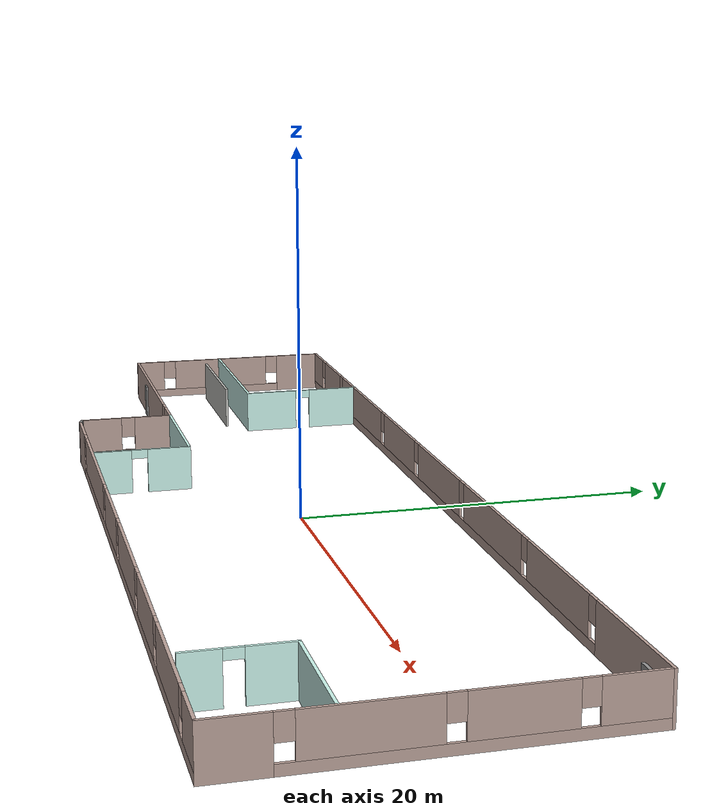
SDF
<?xml version='1.0'?>
<sdf version='1.6'>
  <model name='Building'>
    <pose frame=''>-0.510354 -1.23056 0 0 -0 0</pose>
    <link name='Door_2'>
      <collision name='Door_2_Collision'>
        <geometry>
          <box>
            <size>0.9 0.17 2</size>
          </box>
        </geometry>
        <pose frame=''>0 0 1 0 -0 0</pose>
      </collision>
      <visual name='Door_2_Visual'>
        <pose frame=''>0 0 1 0 -0 0</pose>
        <geometry>
          <box>
            <size>0.9 0.17 2</size>
          </box>
        </geometry>
        <material>
          <script>
            <uri>file://media/materials/scripts/gazebo.material</uri>
            <name>Gazebo/Grey</name>
          </script>
        </material>
      </visual>
      <pose frame=''>-25.4725 -3.75552 0 0 -0 0</pose>
    </link>
    <link name='Door_3'>
      <collision name='Door_3_Collision'>
        <geometry>
          <box>
            <size>0.9 0.17 2</size>
          </box>
        </geometry>
        <pose frame=''>0 0 1 0 -0 0</pose>
      </collision>
      <visual name='Door_3_Visual'>
        <pose frame=''>0 0 1 0 -0 0</pose>
        <geometry>
          <box>
            <size>0.9 0.17 2</size>
          </box>
        </geometry>
        <material>
          <script>
            <uri>file://media/materials/scripts/gazebo.material</uri>
            <name>Gazebo/Grey</name>
          </script>
        </material>
      </visual>
      <pose frame=''>29.2873 8.73464 0 0 -0 0</pose>
    </link>
    <link name='Wall_21'>
      <pose frame=''>8.25 -9.16807 0 0 -0 0</pose>
      <visual name='Wall_21_Visual_0'>
        <pose frame=''>-20.9527 0 1.25 0 -0 0</pose>
        <geometry>
          <box>
            <size>3.34458 0.15 2.5</size>
          </box>
        </geometry>
        <material>
          <script>
            <uri>file://media/materials/scripts/gazebo.material</uri>
            <name>Gazebo/Grey</name>
          </script>
          <ambient>0.760784 0.662745 0.627451 1</ambient>
        </material>
        <meta>
          <layer>0</layer>
        </meta>
      </visual>
      <collision name='Wall_21_Collision_0'>
        <geometry>
          <box>
            <size>3.34458 0.15 2.5</size>
          </box>
        </geometry>
        <pose frame=''>-20.9527 0 1.25 0 -0 0</pose>
      </collision>
      <visual name='Wall_21_Visual_1'>
        <pose frame=''>1.67229 0 0.25 0 -0 0</pose>
        <geometry>
          <box>
            <size>41.9054 0.15 0.5</size>
          </box>
        </geometry>
        <material>
          <script>
            <uri>file://media/materials/scripts/gazebo.material</uri>
            <name>Gazebo/Grey</name>
          </script>
          <ambient>0.760784 0.662745 0.627451 1</ambient>
        </material>
        <meta>
          <layer>0</layer>
        </meta>
      </visual>
      <collision name='Wall_21_Collision_1'>
        <geometry>
          <box>
            <size>41.9054 0.15 0.5</size>
          </box>
        </geometry>
        <pose frame=''>1.67229 0 0.25 0 -0 0</pose>
      </collision>
      <visual name='Wall_21_Visual_2'>
        <pose frame=''>-13.466 0 1.5 0 -0 0</pose>
        <geometry>
          <box>
            <size>10.0289 0.15 2</size>
          </box>
        </geometry>
        <material>
          <script>
            <uri>file://media/materials/scripts/gazebo.material</uri>
            <name>Gazebo/Grey</name>
          </script>
          <ambient>0.760784 0.662745 0.627451 1</ambient>
        </material>
        <meta>
          <layer>0</layer>
        </meta>
      </visual>
      <collision name='Wall_21_Collision_2'>
        <geometry>
          <box>
            <size>10.0289 0.15 2</size>
          </box>
        </geometry>
        <pose frame=''>-13.466 0 1.5 0 -0 0</pose>
      </collision>
      <visual name='Wall_21_Visual_3'>
        <pose frame=''>-4.94435 0 1.5 0 -0 0</pose>
        <geometry>
          <box>
            <size>5.41432 0.15 2</size>
          </box>
        </geometry>
        <material>
          <script>
            <uri>file://media/materials/scripts/gazebo.material</uri>
            <name>Gazebo/Grey</name>
          </script>
          <ambient>0.760784 0.662745 0.627451 1</ambient>
        </material>
        <meta>
          <layer>0</layer>
        </meta>
      </visual>
      <collision name='Wall_21_Collision_3'>
        <geometry>
          <box>
            <size>5.41432 0.15 2</size>
          </box>
        </geometry>
        <pose frame=''>-4.94435 0 1.5 0 -0 0</pose>
      </collision>
      <visual name='Wall_21_Visual_4'>
        <pose frame=''>1.97753 0 1.5 0 -0 0</pose>
        <geometry>
          <box>
            <size>6.82946 0.15 2</size>
          </box>
        </geometry>
        <material>
          <script>
            <uri>file://media/materials/scripts/gazebo.material</uri>
            <name>Gazebo/Grey</name>
          </script>
          <ambient>0.760784 0.662745 0.627451 1</ambient>
        </material>
        <meta>
          <layer>0</layer>
        </meta>
      </visual>
      <collision name='Wall_21_Collision_4'>
        <geometry>
          <box>
            <size>6.82946 0.15 2</size>
          </box>
        </geometry>
        <pose frame=''>1.97753 0 1.5 0 -0 0</pose>
      </collision>
      <visual name='Wall_21_Visual_5'>
        <pose frame=''>8.99171 0 1.5 0 -0 0</pose>
        <geometry>
          <box>
            <size>5.5989 0.15 2</size>
          </box>
        </geometry>
        <material>
          <script>
            <uri>file://media/materials/scripts/gazebo.material</uri>
            <name>Gazebo/Grey</name>
          </script>
          <ambient>0.760784 0.662745 0.627451 1</ambient>
        </material>
        <meta>
          <layer>0</layer>
        </meta>
      </visual>
      <collision name='Wall_21_Collision_5'>
        <geometry>
          <box>
            <size>5.5989 0.15 2</size>
          </box>
        </geometry>
        <pose frame=''>8.99171 0 1.5 0 -0 0</pose>
      </collision>
      <visual name='Wall_21_Visual_6'>
        <pose frame=''>15.8521 0 1.5 0 -0 0</pose>
        <geometry>
          <box>
            <size>6.52182 0.15 2</size>
          </box>
        </geometry>
        <material>
          <script>
            <uri>file://media/materials/scripts/gazebo.material</uri>
            <name>Gazebo/Grey</name>
          </script>
          <ambient>0.760784 0.662745 0.627451 1</ambient>
        </material>
        <meta>
          <layer>0</layer>
        </meta>
      </visual>
      <collision name='Wall_21_Collision_6'>
        <geometry>
          <box>
            <size>6.52182 0.15 2</size>
          </box>
        </geometry>
        <pose frame=''>15.8521 0 1.5 0 -0 0</pose>
      </collision>
      <visual name='Wall_21_Visual_7'>
        <pose frame=''>21.269 0 1.5 0 -0 0</pose>
        <geometry>
          <box>
            <size>2.71202 0.15 2</size>
          </box>
        </geometry>
        <material>
          <script>
            <uri>file://media/materials/scripts/gazebo.material</uri>
            <name>Gazebo/Grey</name>
          </script>
          <ambient>0.760784 0.662745 0.627451 1</ambient>
        </material>
        <meta>
          <layer>0</layer>
        </meta>
      </visual>
      <collision name='Wall_21_Collision_7'>
        <geometry>
          <box>
            <size>2.71202 0.15 2</size>
          </box>
        </geometry>
        <pose frame=''>21.269 0 1.5 0 -0 0</pose>
      </collision>
      <visual name='Wall_21_Visual_8'>
        <pose frame=''>-18.8804 0 1.9 0 -0 0</pose>
        <geometry>
          <box>
            <size>0.8 0.15 1.2</size>
          </box>
        </geometry>
        <material>
          <script>
            <uri>file://media/materials/scripts/gazebo.material</uri>
            <name>Gazebo/Grey</name>
          </script>
          <ambient>0.760784 0.662745 0.627451 1</ambient>
        </material>
        <meta>
          <layer>0</layer>
        </meta>
      </visual>
      <collision name='Wall_21_Collision_8'>
        <geometry>
          <box>
            <size>0.8 0.15 1.2</size>
          </box>
        </geometry>
        <pose frame=''>-18.8804 0 1.9 0 -0 0</pose>
      </collision>
      <visual name='Wall_21_Visual_9'>
        <pose frame=''>-8.05151 0 1.9 0 -0 0</pose>
        <geometry>
          <box>
            <size>0.8 0.15 1.2</size>
          </box>
        </geometry>
        <material>
          <script>
            <uri>file://media/materials/scripts/gazebo.material</uri>
            <name>Gazebo/Grey</name>
          </script>
          <ambient>0.760784 0.662745 0.627451 1</ambient>
        </material>
        <meta>
          <layer>0</layer>
        </meta>
      </visual>
      <collision name='Wall_21_Collision_9'>
        <geometry>
          <box>
            <size>0.8 0.15 1.2</size>
          </box>
        </geometry>
        <pose frame=''>-8.05151 0 1.9 0 -0 0</pose>
      </collision>
      <visual name='Wall_21_Visual_10'>
        <pose frame=''>-1.83719 0 1.9 0 -0 0</pose>
        <geometry>
          <box>
            <size>0.8 0.15 1.2</size>
          </box>
        </geometry>
        <material>
          <script>
            <uri>file://media/materials/scripts/gazebo.material</uri>
            <name>Gazebo/Grey</name>
          </script>
          <ambient>0.760784 0.662745 0.627451 1</ambient>
        </material>
        <meta>
          <layer>0</layer>
        </meta>
      </visual>
      <collision name='Wall_21_Collision_10'>
        <geometry>
          <box>
            <size>0.8 0.15 1.2</size>
          </box>
        </geometry>
        <pose frame=''>-1.83719 0 1.9 0 -0 0</pose>
      </collision>
      <visual name='Wall_21_Visual_11'>
        <pose frame=''>5.79226 0 1.9 0 -0 0</pose>
        <geometry>
          <box>
            <size>0.8 0.15 1.2</size>
          </box>
        </geometry>
        <material>
          <script>
            <uri>file://media/materials/scripts/gazebo.material</uri>
            <name>Gazebo/Grey</name>
          </script>
          <ambient>0.760784 0.662745 0.627451 1</ambient>
        </material>
        <meta>
          <layer>0</layer>
        </meta>
      </visual>
      <collision name='Wall_21_Collision_11'>
        <geometry>
          <box>
            <size>0.8 0.15 1.2</size>
          </box>
        </geometry>
        <pose frame=''>5.79226 0 1.9 0 -0 0</pose>
      </collision>
      <visual name='Wall_21_Visual_12'>
        <pose frame=''>12.1912 0 1.9 0 -0 0</pose>
        <geometry>
          <box>
            <size>0.8 0.15 1.2</size>
          </box>
        </geometry>
        <material>
          <script>
            <uri>file://media/materials/scripts/gazebo.material</uri>
            <name>Gazebo/Grey</name>
          </script>
          <ambient>0.760784 0.662745 0.627451 1</ambient>
        </material>
        <meta>
          <layer>0</layer>
        </meta>
      </visual>
      <collision name='Wall_21_Collision_12'>
        <geometry>
          <box>
            <size>0.8 0.15 1.2</size>
          </box>
        </geometry>
        <pose frame=''>12.1912 0 1.9 0 -0 0</pose>
      </collision>
      <visual name='Wall_21_Visual_13'>
        <pose frame=''>19.513 0 1.9 0 -0 0</pose>
        <geometry>
          <box>
            <size>0.8 0.15 1.2</size>
          </box>
        </geometry>
        <material>
          <script>
            <uri>file://media/materials/scripts/gazebo.material</uri>
            <name>Gazebo/Grey</name>
          </script>
          <ambient>0.760784 0.662745 0.627451 1</ambient>
        </material>
        <meta>
          <layer>0</layer>
        </meta>
      </visual>
      <collision name='Wall_21_Collision_13'>
        <geometry>
          <box>
            <size>0.8 0.15 1.2</size>
          </box>
        </geometry>
        <pose frame=''>19.513 0 1.9 0 -0 0</pose>
      </collision>
    </link>
    <link name='Wall_22'>
      <pose frame=''>30.8 0.006928 0 0 -0 1.5708</pose>
      <visual name='Wall_22_Visual_0'>
        <pose frame=''>-7.8084 0 1.25 0 -0 0</pose>
        <geometry>
          <box>
            <size>2.88319 0.15 2.5</size>
          </box>
        </geometry>
        <material>
          <script>
            <uri>file://media/materials/scripts/gazebo.material</uri>
            <name>Gazebo/Grey</name>
          </script>
          <ambient>0.760784 0.662745 0.627451 1</ambient>
        </material>
        <meta>
          <layer>0</layer>
        </meta>
      </visual>
      <collision name='Wall_22_Collision_0'>
        <geometry>
          <box>
            <size>2.88319 0.15 2.5</size>
          </box>
        </geometry>
        <pose frame=''>-7.8084 0 1.25 0 -0 0</pose>
      </collision>
      <visual name='Wall_22_Visual_1'>
        <pose frame=''>1.44159 0 0.25 0 -0 0</pose>
        <geometry>
          <box>
            <size>15.6168 0.15 0.5</size>
          </box>
        </geometry>
        <material>
          <script>
            <uri>file://media/materials/scripts/gazebo.material</uri>
            <name>Gazebo/Grey</name>
          </script>
          <ambient>0.760784 0.662745 0.627451 1</ambient>
        </material>
        <meta>
          <layer>0</layer>
        </meta>
      </visual>
      <collision name='Wall_22_Collision_1'>
        <geometry>
          <box>
            <size>15.6168 0.15 0.5</size>
          </box>
        </geometry>
        <pose frame=''>1.44159 0 0.25 0 -0 0</pose>
      </collision>
      <visual name='Wall_22_Visual_2'>
        <pose frame=''>-2.7366 0 1.5 0 -0 0</pose>
        <geometry>
          <box>
            <size>5.66043 0.15 2</size>
          </box>
        </geometry>
        <material>
          <script>
            <uri>file://media/materials/scripts/gazebo.material</uri>
            <name>Gazebo/Grey</name>
          </script>
          <ambient>0.760784 0.662745 0.627451 1</ambient>
        </material>
        <meta>
          <layer>0</layer>
        </meta>
      </visual>
      <collision name='Wall_22_Collision_2'>
        <geometry>
          <box>
            <size>5.66043 0.15 2</size>
          </box>
        </geometry>
        <pose frame=''>-2.7366 0 1.5 0 -0 0</pose>
      </collision>
      <visual name='Wall_22_Visual_3'>
        <pose frame=''>3.13931 0 1.5 0 -0 0</pose>
        <geometry>
          <box>
            <size>4.4914 0.15 2</size>
          </box>
        </geometry>
        <material>
          <script>
            <uri>file://media/materials/scripts/gazebo.material</uri>
            <name>Gazebo/Grey</name>
          </script>
          <ambient>0.760784 0.662745 0.627451 1</ambient>
        </material>
        <meta>
          <layer>0</layer>
        </meta>
      </visual>
      <collision name='Wall_22_Collision_3'>
        <geometry>
          <box>
            <size>4.4914 0.15 2</size>
          </box>
        </geometry>
        <pose frame=''>3.13931 0 1.5 0 -0 0</pose>
      </collision>
      <visual name='Wall_22_Visual_4'>
        <pose frame=''>7.71751 0 1.5 0 -0 0</pose>
        <geometry>
          <box>
            <size>3.06499 0.15 2</size>
          </box>
        </geometry>
        <material>
          <script>
            <uri>file://media/materials/scripts/gazebo.material</uri>
            <name>Gazebo/Grey</name>
          </script>
          <ambient>0.760784 0.662745 0.627451 1</ambient>
        </material>
        <meta>
          <layer>0</layer>
        </meta>
      </visual>
      <collision name='Wall_22_Collision_4'>
        <geometry>
          <box>
            <size>3.06499 0.15 2</size>
          </box>
        </geometry>
        <pose frame=''>7.71751 0 1.5 0 -0 0</pose>
      </collision>
      <visual name='Wall_22_Visual_5'>
        <pose frame=''>-5.96681 0 1.9 0 -0 0</pose>
        <geometry>
          <box>
            <size>0.8 0.15 1.2</size>
          </box>
        </geometry>
        <material>
          <script>
            <uri>file://media/materials/scripts/gazebo.material</uri>
            <name>Gazebo/Grey</name>
          </script>
          <ambient>0.760784 0.662745 0.627451 1</ambient>
        </material>
        <meta>
          <layer>0</layer>
        </meta>
      </visual>
      <collision name='Wall_22_Collision_5'>
        <geometry>
          <box>
            <size>0.8 0.15 1.2</size>
          </box>
        </geometry>
        <pose frame=''>-5.96681 0 1.9 0 -0 0</pose>
      </collision>
      <visual name='Wall_22_Visual_6'>
        <pose frame=''>0.493616 0 1.9 0 -0 0</pose>
        <geometry>
          <box>
            <size>0.8 0.15 1.2</size>
          </box>
        </geometry>
        <material>
          <script>
            <uri>file://media/materials/scripts/gazebo.material</uri>
            <name>Gazebo/Grey</name>
          </script>
          <ambient>0.760784 0.662745 0.627451 1</ambient>
        </material>
        <meta>
          <layer>0</layer>
        </meta>
      </visual>
      <collision name='Wall_22_Collision_6'>
        <geometry>
          <box>
            <size>0.8 0.15 1.2</size>
          </box>
        </geometry>
        <pose frame=''>0.493616 0 1.9 0 -0 0</pose>
      </collision>
      <visual name='Wall_22_Visual_7'>
        <pose frame=''>5.78501 0 1.9 0 -0 0</pose>
        <geometry>
          <box>
            <size>0.8 0.15 1.2</size>
          </box>
        </geometry>
        <material>
          <script>
            <uri>file://media/materials/scripts/gazebo.material</uri>
            <name>Gazebo/Grey</name>
          </script>
          <ambient>0.760784 0.662745 0.627451 1</ambient>
        </material>
        <meta>
          <layer>0</layer>
        </meta>
      </visual>
      <collision name='Wall_22_Collision_7'>
        <geometry>
          <box>
            <size>0.8 0.15 1.2</size>
          </box>
        </geometry>
        <pose frame=''>5.78501 0 1.9 0 -0 0</pose>
      </collision>
    </link>
    <link name='Wall_23'>
      <pose frame=''>0 9.18193 0 0 -0 3.14159</pose>
      <visual name='Wall_23_Visual_0'>
        <pose frame=''>-26.9656 0 1.25 0 -0 0</pose>
        <geometry>
          <box>
            <size>7.81883 0.15 2.5</size>
          </box>
        </geometry>
        <material>
          <script>
            <uri>file://media/materials/scripts/gazebo.material</uri>
            <name>Gazebo/Grey</name>
          </script>
          <ambient>0.760784 0.662745 0.627451 1</ambient>
        </material>
        <meta>
          <layer>0</layer>
        </meta>
      </visual>
      <collision name='Wall_23_Collision_0'>
        <geometry>
          <box>
            <size>7.81883 0.15 2.5</size>
          </box>
        </geometry>
        <pose frame=''>-26.9656 0 1.25 0 -0 0</pose>
      </collision>
      <visual name='Wall_23_Visual_1'>
        <pose frame=''>3.90942 0 0.25 0 -0 0</pose>
        <geometry>
          <box>
            <size>53.9312 0.15 0.5</size>
          </box>
        </geometry>
        <material>
          <script>
            <uri>file://media/materials/scripts/gazebo.material</uri>
            <name>Gazebo/Grey</name>
          </script>
          <ambient>0.760784 0.662745 0.627451 1</ambient>
        </material>
        <meta>
          <layer>0</layer>
        </meta>
      </visual>
      <collision name='Wall_23_Collision_1'>
        <geometry>
          <box>
            <size>53.9312 0.15 0.5</size>
          </box>
        </geometry>
        <pose frame=''>3.90942 0 0.25 0 -0 0</pose>
      </collision>
      <visual name='Wall_23_Visual_2'>
        <pose frame=''>-18.38 0 1.5 0 -0 0</pose>
        <geometry>
          <box>
            <size>7.75237 0.15 2</size>
          </box>
        </geometry>
        <material>
          <script>
            <uri>file://media/materials/scripts/gazebo.material</uri>
            <name>Gazebo/Grey</name>
          </script>
          <ambient>0.760784 0.662745 0.627451 1</ambient>
        </material>
        <meta>
          <layer>0</layer>
        </meta>
      </visual>
      <collision name='Wall_23_Collision_2'>
        <geometry>
          <box>
            <size>7.75237 0.15 2</size>
          </box>
        </geometry>
        <pose frame=''>-18.38 0 1.5 0 -0 0</pose>
      </collision>
      <visual name='Wall_23_Visual_3'>
        <pose frame=''>-9.21232 0 1.5 0 -0 0</pose>
        <geometry>
          <box>
            <size>8.98293 0.15 2</size>
          </box>
        </geometry>
        <material>
          <script>
            <uri>file://media/materials/scripts/gazebo.material</uri>
            <name>Gazebo/Grey</name>
          </script>
          <ambient>0.760784 0.662745 0.627451 1</ambient>
        </material>
        <meta>
          <layer>0</layer>
        </meta>
      </visual>
      <collision name='Wall_23_Collision_3'>
        <geometry>
          <box>
            <size>8.98293 0.15 2</size>
          </box>
        </geometry>
        <pose frame=''>-9.21232 0 1.5 0 -0 0</pose>
      </collision>
      <visual name='Wall_23_Visual_4'>
        <pose frame=''>-0.013907 0 1.5 0 -0 0</pose>
        <geometry>
          <box>
            <size>7.8139 0.15 2</size>
          </box>
        </geometry>
        <material>
          <script>
            <uri>file://media/materials/scripts/gazebo.material</uri>
            <name>Gazebo/Grey</name>
          </script>
          <ambient>0.760784 0.662745 0.627451 1</ambient>
        </material>
        <meta>
          <layer>0</layer>
        </meta>
      </visual>
      <collision name='Wall_23_Collision_4'>
        <geometry>
          <box>
            <size>7.8139 0.15 2</size>
          </box>
        </geometry>
        <pose frame=''>-0.013907 0 1.5 0 -0 0</pose>
      </collision>
      <visual name='Wall_23_Visual_5'>
        <pose frame=''>8.04625 0 1.5 0 -0 0</pose>
        <geometry>
          <box>
            <size>6.7064 0.15 2</size>
          </box>
        </geometry>
        <material>
          <script>
            <uri>file://media/materials/scripts/gazebo.material</uri>
            <name>Gazebo/Grey</name>
          </script>
          <ambient>0.760784 0.662745 0.627451 1</ambient>
        </material>
        <meta>
          <layer>0</layer>
        </meta>
      </visual>
      <collision name='Wall_23_Collision_5'>
        <geometry>
          <box>
            <size>6.7064 0.15 2</size>
          </box>
        </geometry>
        <pose frame=''>8.04625 0 1.5 0 -0 0</pose>
      </collision>
      <visual name='Wall_23_Visual_6'>
        <pose frame=''>17.2447 0 1.5 0 -0 0</pose>
        <geometry>
          <box>
            <size>10.0904 0.15 2</size>
          </box>
        </geometry>
        <material>
          <script>
            <uri>file://media/materials/scripts/gazebo.material</uri>
            <name>Gazebo/Grey</name>
          </script>
          <ambient>0.760784 0.662745 0.627451 1</ambient>
        </material>
        <meta>
          <layer>0</layer>
        </meta>
      </visual>
      <collision name='Wall_23_Collision_6'>
        <geometry>
          <box>
            <size>10.0904 0.15 2</size>
          </box>
        </geometry>
        <pose frame=''>17.2447 0 1.5 0 -0 0</pose>
      </collision>
      <visual name='Wall_23_Visual_7'>
        <pose frame=''>25.2741 0 1.5 0 -0 0</pose>
        <geometry>
          <box>
            <size>4.36834 0.15 2</size>
          </box>
        </geometry>
        <material>
          <script>
            <uri>file://media/materials/scripts/gazebo.material</uri>
            <name>Gazebo/Grey</name>
          </script>
          <ambient>0.760784 0.662745 0.627451 1</ambient>
        </material>
        <meta>
          <layer>0</layer>
        </meta>
      </visual>
      <collision name='Wall_23_Collision_7'>
        <geometry>
          <box>
            <size>4.36834 0.15 2</size>
          </box>
        </geometry>
        <pose frame=''>25.2741 0 1.5 0 -0 0</pose>
      </collision>
      <visual name='Wall_23_Visual_8'>
        <pose frame=''>29.5666 0 1.5 0 -0 0</pose>
        <geometry>
          <box>
            <size>2.61678 0.15 2</size>
          </box>
        </geometry>
        <material>
          <script>
            <uri>file://media/materials/scripts/gazebo.material</uri>
            <name>Gazebo/Grey</name>
          </script>
          <ambient>0.760784 0.662745 0.627451 1</ambient>
        </material>
        <meta>
          <layer>0</layer>
        </meta>
      </visual>
      <collision name='Wall_23_Collision_8'>
        <geometry>
          <box>
            <size>2.61678 0.15 2</size>
          </box>
        </geometry>
        <pose frame=''>29.5666 0 1.5 0 -0 0</pose>
      </collision>
      <visual name='Wall_23_Visual_9'>
        <pose frame=''>-22.6562 0 1.9 0 -0 0</pose>
        <geometry>
          <box>
            <size>0.8 0.15 1.2</size>
          </box>
        </geometry>
        <material>
          <script>
            <uri>file://media/materials/scripts/gazebo.material</uri>
            <name>Gazebo/Grey</name>
          </script>
          <ambient>0.760784 0.662745 0.627451 1</ambient>
        </material>
        <meta>
          <layer>0</layer>
        </meta>
      </visual>
      <collision name='Wall_23_Collision_9'>
        <geometry>
          <box>
            <size>0.8 0.15 1.2</size>
          </box>
        </geometry>
        <pose frame=''>-22.6562 0 1.9 0 -0 0</pose>
      </collision>
      <visual name='Wall_23_Visual_10'>
        <pose frame=''>-14.1038 0 1.9 0 -0 0</pose>
        <geometry>
          <box>
            <size>0.8 0.15 1.2</size>
          </box>
        </geometry>
        <material>
          <script>
            <uri>file://media/materials/scripts/gazebo.material</uri>
            <name>Gazebo/Grey</name>
          </script>
          <ambient>0.760784 0.662745 0.627451 1</ambient>
        </material>
        <meta>
          <layer>0</layer>
        </meta>
      </visual>
      <collision name='Wall_23_Collision_10'>
        <geometry>
          <box>
            <size>0.8 0.15 1.2</size>
          </box>
        </geometry>
        <pose frame=''>-14.1038 0 1.9 0 -0 0</pose>
      </collision>
      <visual name='Wall_23_Visual_11'>
        <pose frame=''>-4.32086 0 1.9 0 -0 0</pose>
        <geometry>
          <box>
            <size>0.8 0.15 1.2</size>
          </box>
        </geometry>
        <material>
          <script>
            <uri>file://media/materials/scripts/gazebo.material</uri>
            <name>Gazebo/Grey</name>
          </script>
          <ambient>0.760784 0.662745 0.627451 1</ambient>
        </material>
        <meta>
          <layer>0</layer>
        </meta>
      </visual>
      <collision name='Wall_23_Collision_11'>
        <geometry>
          <box>
            <size>0.8 0.15 1.2</size>
          </box>
        </geometry>
        <pose frame=''>-4.32086 0 1.9 0 -0 0</pose>
      </collision>
      <visual name='Wall_23_Visual_12'>
        <pose frame=''>4.29304 0 1.9 0 -0 0</pose>
        <geometry>
          <box>
            <size>0.8 0.15 1.2</size>
          </box>
        </geometry>
        <material>
          <script>
            <uri>file://media/materials/scripts/gazebo.material</uri>
            <name>Gazebo/Grey</name>
          </script>
          <ambient>0.760784 0.662745 0.627451 1</ambient>
        </material>
        <meta>
          <layer>0</layer>
        </meta>
      </visual>
      <collision name='Wall_23_Collision_12'>
        <geometry>
          <box>
            <size>0.8 0.15 1.2</size>
          </box>
        </geometry>
        <pose frame=''>4.29304 0 1.9 0 -0 0</pose>
      </collision>
      <visual name='Wall_23_Visual_13'>
        <pose frame=''>11.7994 0 1.9 0 -0 0</pose>
        <geometry>
          <box>
            <size>0.8 0.15 1.2</size>
          </box>
        </geometry>
        <material>
          <script>
            <uri>file://media/materials/scripts/gazebo.material</uri>
            <name>Gazebo/Grey</name>
          </script>
          <ambient>0.760784 0.662745 0.627451 1</ambient>
        </material>
        <meta>
          <layer>0</layer>
        </meta>
      </visual>
      <collision name='Wall_23_Collision_13'>
        <geometry>
          <box>
            <size>0.8 0.15 1.2</size>
          </box>
        </geometry>
        <pose frame=''>11.7994 0 1.9 0 -0 0</pose>
      </collision>
      <visual name='Wall_23_Visual_14'>
        <pose frame=''>22.6899 0 1.9 0 -0 0</pose>
        <geometry>
          <box>
            <size>0.8 0.15 1.2</size>
          </box>
        </geometry>
        <material>
          <script>
            <uri>file://media/materials/scripts/gazebo.material</uri>
            <name>Gazebo/Grey</name>
          </script>
          <ambient>0.760784 0.662745 0.627451 1</ambient>
        </material>
        <meta>
          <layer>0</layer>
        </meta>
      </visual>
      <collision name='Wall_23_Collision_14'>
        <geometry>
          <box>
            <size>0.8 0.15 1.2</size>
          </box>
        </geometry>
        <pose frame=''>22.6899 0 1.9 0 -0 0</pose>
      </collision>
      <visual name='Wall_23_Visual_15'>
        <pose frame=''>27.8582 0 1.9 0 -0 0</pose>
        <geometry>
          <box>
            <size>0.8 0.15 1.2</size>
          </box>
        </geometry>
        <material>
          <script>
            <uri>file://media/materials/scripts/gazebo.material</uri>
            <name>Gazebo/Grey</name>
          </script>
          <ambient>0.760784 0.662745 0.627451 1</ambient>
        </material>
        <meta>
          <layer>0</layer>
        </meta>
      </visual>
      <collision name='Wall_23_Collision_15'>
        <geometry>
          <box>
            <size>0.8 0.15 1.2</size>
          </box>
        </geometry>
        <pose frame=''>27.8582 0 1.9 0 -0 0</pose>
      </collision>
    </link>
    <link name='Wall_24'>
      <pose frame=''>-30.8 2.75693 0 0 0 -1.5708</pose>
      <visual name='Wall_24_Visual_0'>
        <pose frame=''>-4.99827 0 1.25 0 -0 0</pose>
        <geometry>
          <box>
            <size>3.00346 0.15 2.5</size>
          </box>
        </geometry>
        <material>
          <script>
            <uri>file://media/materials/scripts/gazebo.material</uri>
            <name>Gazebo/Grey</name>
          </script>
          <ambient>0.760784 0.662745 0.627451 1</ambient>
        </material>
        <meta>
          <layer>0</layer>
        </meta>
      </visual>
      <collision name='Wall_24_Collision_0'>
        <geometry>
          <box>
            <size>3.00346 0.15 2.5</size>
          </box>
        </geometry>
        <pose frame=''>-4.99827 0 1.25 0 -0 0</pose>
      </collision>
      <visual name='Wall_24_Visual_1'>
        <pose frame=''>1.50173 0 0.25 0 -0 0</pose>
        <geometry>
          <box>
            <size>9.99654 0.15 0.5</size>
          </box>
        </geometry>
        <material>
          <script>
            <uri>file://media/materials/scripts/gazebo.material</uri>
            <name>Gazebo/Grey</name>
          </script>
          <ambient>0.760784 0.662745 0.627451 1</ambient>
        </material>
        <meta>
          <layer>0</layer>
        </meta>
      </visual>
      <collision name='Wall_24_Collision_1'>
        <geometry>
          <box>
            <size>9.99654 0.15 0.5</size>
          </box>
        </geometry>
        <pose frame=''>1.50173 0 0.25 0 -0 0</pose>
      </collision>
      <visual name='Wall_24_Visual_2'>
        <pose frame=''>0.564367 0 1.5 0 -0 0</pose>
        <geometry>
          <box>
            <size>6.52182 0.15 2</size>
          </box>
        </geometry>
        <material>
          <script>
            <uri>file://media/materials/scripts/gazebo.material</uri>
            <name>Gazebo/Grey</name>
          </script>
          <ambient>0.760784 0.662745 0.627451 1</ambient>
        </material>
        <meta>
          <layer>0</layer>
        </meta>
      </visual>
      <collision name='Wall_24_Collision_2'>
        <geometry>
          <box>
            <size>6.52182 0.15 2</size>
          </box>
        </geometry>
        <pose frame=''>0.564367 0 1.5 0 -0 0</pose>
      </collision>
      <visual name='Wall_24_Visual_3'>
        <pose frame=''>5.56264 0 1.5 0 -0 0</pose>
        <geometry>
          <box>
            <size>1.87472 0.15 2</size>
          </box>
        </geometry>
        <material>
          <script>
            <uri>file://media/materials/scripts/gazebo.material</uri>
            <name>Gazebo/Grey</name>
          </script>
          <ambient>0.760784 0.662745 0.627451 1</ambient>
        </material>
        <meta>
          <layer>0</layer>
        </meta>
      </visual>
      <collision name='Wall_24_Collision_3'>
        <geometry>
          <box>
            <size>1.87472 0.15 2</size>
          </box>
        </geometry>
        <pose frame=''>5.56264 0 1.5 0 -0 0</pose>
      </collision>
      <visual name='Wall_24_Visual_4'>
        <pose frame=''>-3.09654 0 1.9 0 -0 0</pose>
        <geometry>
          <box>
            <size>0.8 0.15 1.2</size>
          </box>
        </geometry>
        <material>
          <script>
            <uri>file://media/materials/scripts/gazebo.material</uri>
            <name>Gazebo/Grey</name>
          </script>
          <ambient>0.760784 0.662745 0.627451 1</ambient>
        </material>
        <meta>
          <layer>0</layer>
        </meta>
      </visual>
      <collision name='Wall_24_Collision_4'>
        <geometry>
          <box>
            <size>0.8 0.15 1.2</size>
          </box>
        </geometry>
        <pose frame=''>-3.09654 0 1.9 0 -0 0</pose>
      </collision>
      <visual name='Wall_24_Visual_5'>
        <pose frame=''>4.22528 0 1.9 0 -0 0</pose>
        <geometry>
          <box>
            <size>0.8 0.15 1.2</size>
          </box>
        </geometry>
        <material>
          <script>
            <uri>file://media/materials/scripts/gazebo.material</uri>
            <name>Gazebo/Grey</name>
          </script>
          <ambient>0.760784 0.662745 0.627451 1</ambient>
        </material>
        <meta>
          <layer>0</layer>
        </meta>
      </visual>
      <collision name='Wall_24_Collision_5'>
        <geometry>
          <box>
            <size>0.8 0.15 1.2</size>
          </box>
        </geometry>
        <pose frame=''>4.22528 0 1.9 0 -0 0</pose>
      </collision>
    </link>
    <link name='Wall_25'>
      <pose frame=''>-22.75 -3.66807 0 0 -0 0</pose>
      <visual name='Wall_25_Visual_0'>
        <pose frame=''>-1.55598 0 1.25 0 -0 0</pose>
        <geometry>
          <box>
            <size>13.138 0.15 2.5</size>
          </box>
        </geometry>
        <material>
          <script>
            <uri>file://media/materials/scripts/gazebo.material</uri>
            <name>Gazebo/Grey</name>
          </script>
          <ambient>0.760784 0.662745 0.627451 1</ambient>
        </material>
        <meta>
          <layer>0</layer>
        </meta>
      </visual>
      <collision name='Wall_25_Collision_0'>
        <geometry>
          <box>
            <size>13.138 0.15 2.5</size>
          </box>
        </geometry>
        <pose frame=''>-1.55598 0 1.25 0 -0 0</pose>
      </collision>
      <visual name='Wall_25_Visual_1'>
        <pose frame=''>6.56902 0 0.25 0 -0 0</pose>
        <geometry>
          <box>
            <size>3.11195 0.15 0.5</size>
          </box>
        </geometry>
        <material>
          <script>
            <uri>file://media/materials/scripts/gazebo.material</uri>
            <name>Gazebo/Grey</name>
          </script>
          <ambient>0.760784 0.662745 0.627451 1</ambient>
        </material>
        <meta>
          <layer>0</layer>
        </meta>
      </visual>
      <collision name='Wall_25_Collision_1'>
        <geometry>
          <box>
            <size>3.11195 0.15 0.5</size>
          </box>
        </geometry>
        <pose frame=''>6.56902 0 0.25 0 -0 0</pose>
      </collision>
      <visual name='Wall_25_Visual_2'>
        <pose frame=''>6.96902 0 1.5 0 -0 0</pose>
        <geometry>
          <box>
            <size>2.31195 0.15 2</size>
          </box>
        </geometry>
        <material>
          <script>
            <uri>file://media/materials/scripts/gazebo.material</uri>
            <name>Gazebo/Grey</name>
          </script>
          <ambient>0.760784 0.662745 0.627451 1</ambient>
        </material>
        <meta>
          <layer>0</layer>
        </meta>
      </visual>
      <collision name='Wall_25_Collision_2'>
        <geometry>
          <box>
            <size>2.31195 0.15 2</size>
          </box>
        </geometry>
        <pose frame=''>6.96902 0 1.5 0 -0 0</pose>
      </collision>
      <visual name='Wall_25_Visual_3'>
        <pose frame=''>5.41305 0 1.9 0 -0 0</pose>
        <geometry>
          <box>
            <size>0.8 0.15 1.2</size>
          </box>
        </geometry>
        <material>
          <script>
            <uri>file://media/materials/scripts/gazebo.material</uri>
            <name>Gazebo/Grey</name>
          </script>
          <ambient>0.760784 0.662745 0.627451 1</ambient>
        </material>
        <meta>
          <layer>0</layer>
        </meta>
      </visual>
      <collision name='Wall_25_Collision_3'>
        <geometry>
          <box>
            <size>0.8 0.15 1.2</size>
          </box>
        </geometry>
        <pose frame=''>5.41305 0 1.9 0 -0 0</pose>
      </collision>
    </link>
    <link name='Wall_26'>
      <pose frame=''>-14.7 -6.34307 0 0 0 -1.5708</pose>
      <visual name='Wall_26_Visual_0'>
        <pose frame=''>-1.61278 0 1.25 0 -0 0</pose>
        <geometry>
          <box>
            <size>2.27445 0.15 2.5</size>
          </box>
        </geometry>
        <material>
          <script>
            <uri>file://media/materials/scripts/gazebo.material</uri>
            <name>Gazebo/Grey</name>
          </script>
          <ambient>0.760784 0.662745 0.627451 1</ambient>
        </material>
        <meta>
          <layer>0</layer>
        </meta>
      </visual>
      <collision name='Wall_26_Collision_0'>
        <geometry>
          <box>
            <size>2.27445 0.15 2.5</size>
          </box>
        </geometry>
        <pose frame=''>-1.61278 0 1.25 0 -0 0</pose>
      </collision>
      <visual name='Wall_26_Visual_1'>
        <pose frame=''>1.13722 0 0.25 0 -0 0</pose>
        <geometry>
          <box>
            <size>3.22555 0.15 0.5</size>
          </box>
        </geometry>
        <material>
          <script>
            <uri>file://media/materials/scripts/gazebo.material</uri>
            <name>Gazebo/Grey</name>
          </script>
          <ambient>0.760784 0.662745 0.627451 1</ambient>
        </material>
        <meta>
          <layer>0</layer>
        </meta>
      </visual>
      <collision name='Wall_26_Collision_1'>
        <geometry>
          <box>
            <size>3.22555 0.15 0.5</size>
          </box>
        </geometry>
        <pose frame=''>1.13722 0 0.25 0 -0 0</pose>
      </collision>
      <visual name='Wall_26_Visual_2'>
        <pose frame=''>1.53723 0 1.5 0 -0 0</pose>
        <geometry>
          <box>
            <size>2.42555 0.15 2</size>
          </box>
        </geometry>
        <material>
          <script>
            <uri>file://media/materials/scripts/gazebo.material</uri>
            <name>Gazebo/Grey</name>
          </script>
          <ambient>0.760784 0.662745 0.627451 1</ambient>
        </material>
        <meta>
          <layer>0</layer>
        </meta>
      </visual>
      <collision name='Wall_26_Collision_2'>
        <geometry>
          <box>
            <size>2.42555 0.15 2</size>
          </box>
        </geometry>
        <pose frame=''>1.53723 0 1.5 0 -0 0</pose>
      </collision>
      <visual name='Wall_26_Visual_3'>
        <pose frame=''>-0.07555 0 1.9 0 -0 0</pose>
        <geometry>
          <box>
            <size>0.8 0.15 1.2</size>
          </box>
        </geometry>
        <material>
          <script>
            <uri>file://media/materials/scripts/gazebo.material</uri>
            <name>Gazebo/Grey</name>
          </script>
          <ambient>0.760784 0.662745 0.627451 1</ambient>
        </material>
        <meta>
          <layer>0</layer>
        </meta>
      </visual>
      <collision name='Wall_26_Collision_3'>
        <geometry>
          <box>
            <size>0.8 0.15 1.2</size>
          </box>
        </geometry>
        <pose frame=''>-0.07555 0 1.9 0 -0 0</pose>
      </collision>
    </link>
    <link name='Wall_27'>
      <collision name='Wall_27_Collision'>
        <geometry>
          <box>
            <size>0.5772 0.15 2.5</size>
          </box>
        </geometry>
        <pose frame=''>0 0 1.25 0 -0 0</pose>
      </collision>
      <visual name='Wall_27_Visual'>
        <pose frame=''>0 0 1.25 0 -0 0</pose>
        <geometry>
          <box>
            <size>0.5772 0.15 2.5</size>
          </box>
        </geometry>
        <material>
          <script>
            <uri>file://media/materials/scripts/gazebo.material</uri>
            <name>Gazebo/Grey</name>
          </script>
          <ambient>1 1 1 1</ambient>
        </material>
        <meta>
          <layer>0</layer>
        </meta>
      </visual>
      <pose frame=''>-14.5 -9.09307 0 0 0 -0.358771</pose>
    </link>
    <link name='Wall_31'>
      <pose frame=''>-19.3563 5.63963 0 0 -0 1.5708</pose>
      <visual name='Wall_31_Visual_0'>
        <pose frame=''>-2.02287 0 1.25 0 -0 0</pose>
        <geometry>
          <box>
            <size>3.20426 0.15 2.5</size>
          </box>
        </geometry>
        <material>
          <script>
            <uri>file://media/materials/scripts/gazebo.material</uri>
            <name>Gazebo/Grey</name>
          </script>
          <ambient>0.831373 1 0.964706 1</ambient>
        </material>
        <meta>
          <layer>0</layer>
        </meta>
      </visual>
      <collision name='Wall_31_Collision_0'>
        <geometry>
          <box>
            <size>3.20426 0.15 2.5</size>
          </box>
        </geometry>
        <pose frame=''>-2.02287 0 1.25 0 -0 0</pose>
      </collision>
      <visual name='Wall_31_Visual_1'>
        <pose frame=''>2.05213 0 1.25 0 -0 0</pose>
        <geometry>
          <box>
            <size>3.14574 0.15 2.5</size>
          </box>
        </geometry>
        <material>
          <script>
            <uri>file://media/materials/scripts/gazebo.material</uri>
            <name>Gazebo/Grey</name>
          </script>
          <ambient>0.831373 1 0.964706 1</ambient>
        </material>
        <meta>
          <layer>0</layer>
        </meta>
      </visual>
      <collision name='Wall_31_Collision_1'>
        <geometry>
          <box>
            <size>3.14574 0.15 2.5</size>
          </box>
        </geometry>
        <pose frame=''>2.05213 0 1.25 0 -0 0</pose>
      </collision>
      <visual name='Wall_31_Visual_2'>
        <pose frame=''>0.029256 0 2.25 0 -0 0</pose>
        <geometry>
          <box>
            <size>0.9 0.15 0.5</size>
          </box>
        </geometry>
        <material>
          <script>
            <uri>file://media/materials/scripts/gazebo.material</uri>
            <name>Gazebo/Grey</name>
          </script>
          <ambient>0.831373 1 0.964706 1</ambient>
        </material>
        <meta>
          <layer>0</layer>
        </meta>
      </visual>
      <collision name='Wall_31_Collision_2'>
        <geometry>
          <box>
            <size>0.9 0.15 0.5</size>
          </box>
        </geometry>
        <pose frame=''>0.029256 0 2.25 0 -0 0</pose>
      </collision>
    </link>
    <link name='Wall_33'>
      <collision name='Wall_33_Collision'>
        <geometry>
          <box>
            <size>11.5 0.15 2.5</size>
          </box>
        </geometry>
        <pose frame=''>0 0 1.25 0 -0 0</pose>
      </collision>
      <visual name='Wall_33_Visual'>
        <pose frame=''>0 0 1.25 0 -0 0</pose>
        <geometry>
          <box>
            <size>11.5 0.15 2.5</size>
          </box>
        </geometry>
        <material>
          <script>
            <uri>file://media/materials/scripts/gazebo.material</uri>
            <name>Gazebo/Grey</name>
          </script>
          <ambient>0.831373 1 0.964706 1</ambient>
        </material>
        <meta>
          <layer>0</layer>
        </meta>
      </visual>
      <pose frame=''>-25.0313 2.08963 0 0 -0 3.14159</pose>
    </link>
    <link name='Wall_35'>
      <collision name='Wall_35_Collision'>
        <geometry>
          <box>
            <size>8.5 0.15 2.5</size>
          </box>
        </geometry>
        <pose frame=''>0 0 1.25 0 -0 0</pose>
      </collision>
      <visual name='Wall_35_Visual'>
        <pose frame=''>0 0 1.25 0 -0 0</pose>
        <geometry>
          <box>
            <size>8.5 0.15 2.5</size>
          </box>
        </geometry>
        <material>
          <script>
            <uri>file://media/materials/scripts/gazebo.material</uri>
            <name>Gazebo/CeilingTiled</name>
          </script>
          <ambient>1 1 1 1</ambient>
        </material>
        <meta>
          <layer>0</layer>
        </meta>
      </visual>
      <pose frame=''>-25.1122 0.9206 0 0 -0 0</pose>
    </link>
    <link name='Wall_37'>
      <collision name='Wall_37_Collision'>
        <geometry>
          <box>
            <size>6.5 0.15 2.5</size>
          </box>
        </geometry>
        <pose frame=''>0 0 1.25 0 -0 0</pose>
      </collision>
      <visual name='Wall_37_Visual'>
        <pose frame=''>0 0 1.25 0 -0 0</pose>
        <geometry>
          <box>
            <size>6.5 0.15 2.5</size>
          </box>
        </geometry>
        <material>
          <script>
            <uri>file://media/materials/scripts/gazebo.material</uri>
            <name>Gazebo/Grey</name>
          </script>
          <ambient>0.831373 1 0.964706 1</ambient>
        </material>
        <meta>
          <layer>0</layer>
        </meta>
      </visual>
      <pose frame=''>27.5413 -3.99099 0 0 -0 3.14159</pose>
    </link>
    <link name='Wall_38'>
      <pose frame=''>24.3663 -6.41599 0 0 0 -1.5708</pose>
      <visual name='Wall_38_Visual_0'>
        <pose frame=''>-1.36465 0 1.25 0 -0 0</pose>
        <geometry>
          <box>
            <size>2.2707 0.15 2.5</size>
          </box>
        </geometry>
        <material>
          <script>
            <uri>file://media/materials/scripts/gazebo.material</uri>
            <name>Gazebo/Grey</name>
          </script>
          <ambient>0.831373 1 0.964706 1</ambient>
        </material>
        <meta>
          <layer>0</layer>
        </meta>
      </visual>
      <collision name='Wall_38_Collision_0'>
        <geometry>
          <box>
            <size>2.2707 0.15 2.5</size>
          </box>
        </geometry>
        <pose frame=''>-1.36465 0 1.25 0 -0 0</pose>
      </collision>
      <visual name='Wall_38_Visual_1'>
        <pose frame=''>1.58535 0 1.25 0 -0 0</pose>
        <geometry>
          <box>
            <size>1.8293 0.15 2.5</size>
          </box>
        </geometry>
        <material>
          <script>
            <uri>file://media/materials/scripts/gazebo.material</uri>
            <name>Gazebo/Grey</name>
          </script>
          <ambient>0.831373 1 0.964706 1</ambient>
        </material>
        <meta>
          <layer>0</layer>
        </meta>
      </visual>
      <collision name='Wall_38_Collision_1'>
        <geometry>
          <box>
            <size>1.8293 0.15 2.5</size>
          </box>
        </geometry>
        <pose frame=''>1.58535 0 1.25 0 -0 0</pose>
      </collision>
      <visual name='Wall_38_Visual_2'>
        <pose frame=''>0.220698 0 2.25 0 -0 0</pose>
        <geometry>
          <box>
            <size>0.9 0.15 0.5</size>
          </box>
        </geometry>
        <material>
          <script>
            <uri>file://media/materials/scripts/gazebo.material</uri>
            <name>Gazebo/Grey</name>
          </script>
          <ambient>0.831373 1 0.964706 1</ambient>
        </material>
        <meta>
          <layer>0</layer>
        </meta>
      </visual>
      <collision name='Wall_38_Collision_2'>
        <geometry>
          <box>
            <size>0.9 0.15 0.5</size>
          </box>
        </geometry>
        <pose frame=''>0.220698 0 2.25 0 -0 0</pose>
      </collision>
    </link>
    <link name='Wall_40'>
      <collision name='Wall_40_Collision'>
        <geometry>
          <box>
            <size>8 0.15 2.5</size>
          </box>
        </geometry>
        <pose frame=''>0 0 1.25 0 -0 0</pose>
      </collision>
      <visual name='Wall_40_Visual'>
        <pose frame=''>0 0 1.25 0 -0 0</pose>
        <geometry>
          <box>
            <size>8 0.15 2.5</size>
          </box>
        </geometry>
        <material>
          <script>
            <uri>file://media/materials/scripts/gazebo.material</uri>
            <name>Gazebo/Grey</name>
          </script>
          <ambient>0.831373 1 0.964706 1</ambient>
        </material>
        <meta>
          <layer>0</layer>
        </meta>
      </visual>
      <pose frame=''>-10.775 -3.66807 0 0 -0 0</pose>
    </link>
    <link name='Wall_41'>
      <pose frame=''>-6.85 -6.34307 0 0 0 -1.5708</pose>
      <visual name='Wall_41_Visual_0'>
        <pose frame=''>-1.51472 0 1.25 0 -0 0</pose>
        <geometry>
          <box>
            <size>2.47056 0.15 2.5</size>
          </box>
        </geometry>
        <material>
          <script>
            <uri>file://media/materials/scripts/gazebo.material</uri>
            <name>Gazebo/Grey</name>
          </script>
          <ambient>0.831373 1 0.964706 1</ambient>
        </material>
        <meta>
          <layer>0</layer>
        </meta>
      </visual>
      <collision name='Wall_41_Collision_0'>
        <geometry>
          <box>
            <size>2.47056 0.15 2.5</size>
          </box>
        </geometry>
        <pose frame=''>-1.51472 0 1.25 0 -0 0</pose>
      </collision>
      <visual name='Wall_41_Visual_1'>
        <pose frame=''>1.68528 0 1.25 0 -0 0</pose>
        <geometry>
          <box>
            <size>2.12944 0.15 2.5</size>
          </box>
        </geometry>
        <material>
          <script>
            <uri>file://media/materials/scripts/gazebo.material</uri>
            <name>Gazebo/Grey</name>
          </script>
          <ambient>0.831373 1 0.964706 1</ambient>
        </material>
        <meta>
          <layer>0</layer>
        </meta>
      </visual>
      <collision name='Wall_41_Collision_1'>
        <geometry>
          <box>
            <size>2.12944 0.15 2.5</size>
          </box>
        </geometry>
        <pose frame=''>1.68528 0 1.25 0 -0 0</pose>
      </collision>
      <visual name='Wall_41_Visual_2'>
        <pose frame=''>0.170562 0 2.25 0 -0 0</pose>
        <geometry>
          <box>
            <size>0.9 0.15 0.5</size>
          </box>
        </geometry>
        <material>
          <script>
            <uri>file://media/materials/scripts/gazebo.material</uri>
            <name>Gazebo/Grey</name>
          </script>
          <ambient>0.831373 1 0.964706 1</ambient>
        </material>
        <meta>
          <layer>0</layer>
        </meta>
      </visual>
      <collision name='Wall_41_Collision_2'>
        <geometry>
          <box>
            <size>0.9 0.15 0.5</size>
          </box>
        </geometry>
        <pose frame=''>0.170562 0 2.25 0 -0 0</pose>
      </collision>
    </link>
    <static>1</static>
  </model>
</sdf>
